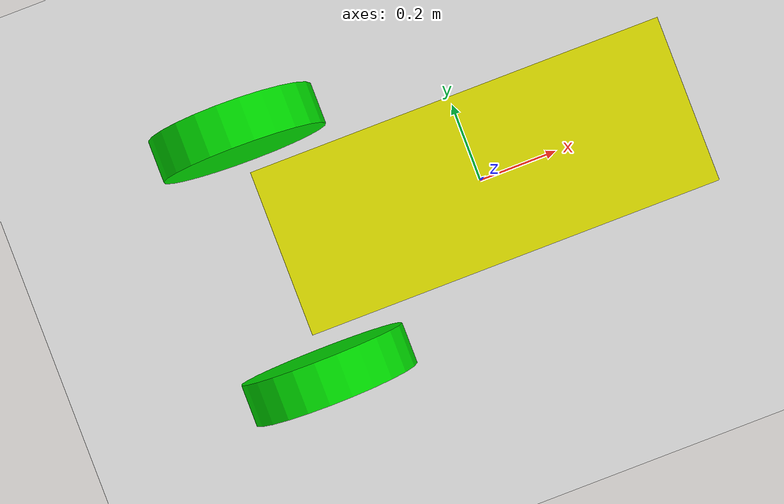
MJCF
<mujoco model="perfect">
    <option gravity="5 0 -9.81" />
    <worldbody>
        <light diffuse=".5 .5 .5" pos="0 0 3" dir="0 0 -1"/>
        <geom type="plane" size="5 5 0.1" rgba=".9 .9 .9 1"/>
        <body name="chassis" pos="0 0 0.2" euler="0 90 0">
            <joint type="free"/>
            <geom type="box" size=".05 .2 .5" rgba=".9 .9 0 1"/>
            <body pos="0 0.3 -0.5" euler="90 0 0">
                <joint name="left-wheel" type="hinge" axis="0 0 -1"/>
                <geom type="cylinder" size=".2 0.05" rgba="0 .9 0 1"/>
            </body>
            <body pos="0 -0.3 -0.5" euler="90 0 0">
                <joint name="right-wheel" type="hinge" axis="0 0 -1"/>
                <geom type="cylinder" size=".2 0.05" rgba="0 .9 0 1"/>
            </body>
        </body>
    </worldbody>
    <actuator>
        <velocity name="left-vel" joint="left-wheel" kv="10"/>
        <velocity name="right-vel" joint="right-wheel" kv="10"/>
    </actuator>
</mujoco>
